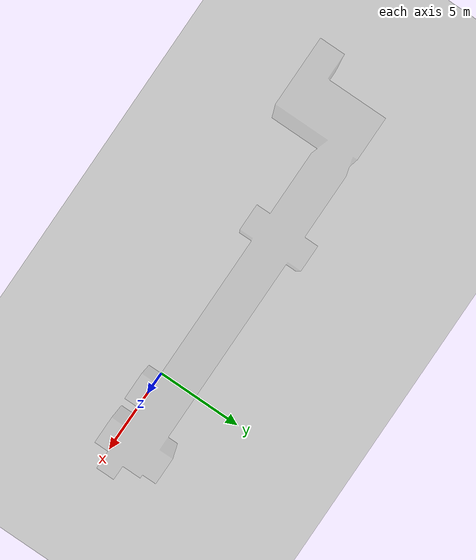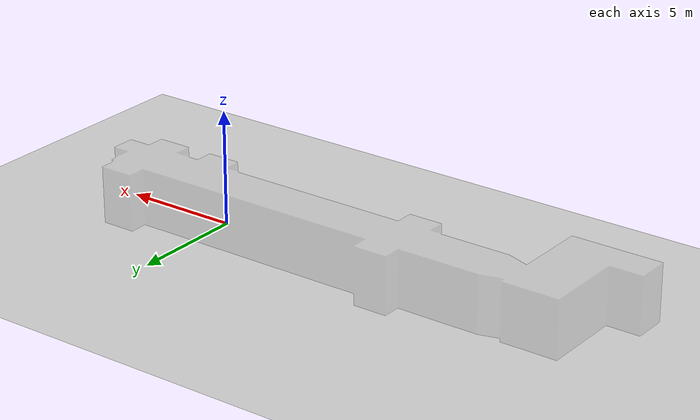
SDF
<sdf version="1.4">
	<world name="default">
		<physics type='ode'>
			<gravity>0 0 -1</gravity>
			<ode>
				<solver>
					<type>quick</type>
					<iters>20</iters>
					<sor>1</sor>
				</solver>
				<constraints>
					<cfm>0</cfm>
					<erp>0.2</erp>
					<contact_max_correcting_vel>100</contact_max_correcting_vel>
					<contact_surface_layer>0</contact_surface_layer>
				</constraints>
			</ode>
			<max_step_size>0.003</max_step_size>
			<real_time_factor>1</real_time_factor>
			<real_time_update_rate>1000</real_time_update_rate>
		</physics>

		<include>
			<uri>model://sun</uri>
		</include>

		<include>
			<uri>model://ground_plane</uri>
		</include>

		<include>
			<uri>model://lab_without_windows</uri>
			<pose>0.0 0.0 0.0 0.0 0.0 0</pose>
		</include>

		<gui fullscreen='0'>
			<camera name='user_camera'>
				<pose>-6.70176 -1.86802 24.3202 2.9e-05 1.5698 1.57837</pose>
				<view_controller>orbit</view_controller>
			</camera>
		</gui>
	</world>
</sdf>

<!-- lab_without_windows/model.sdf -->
<sdf version="1.4">
  <model name="lab_without_windows">
    <link name="link">
      <inertial>
        <mass>0.1</mass>
      </inertial>
      <collision name="collision">
        <geometry>
          <mesh>
            <uri>model://lab_without_windows/meshes/lab_without_windows.stl</uri>
          </mesh>
        </geometry>
      </collision>
      <visual name="visual">
        <transparency>0.75</transparency>
        <geometry>
          <mesh>
            <uri>model://lab_without_windows/meshes/lab_without_windows.stl</uri>
          </mesh>
        </geometry>
      </visual>
    </link>
  </model>
</sdf>
